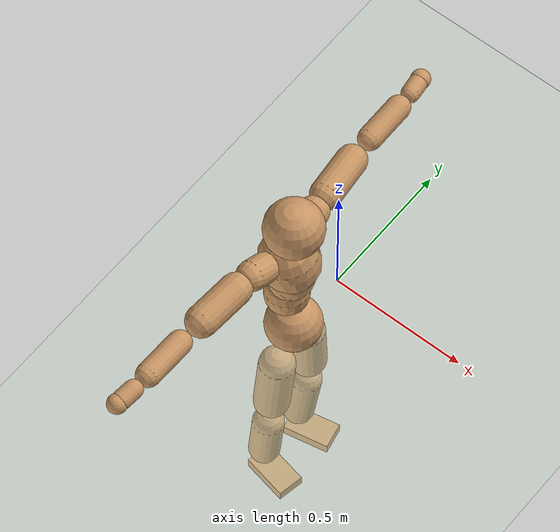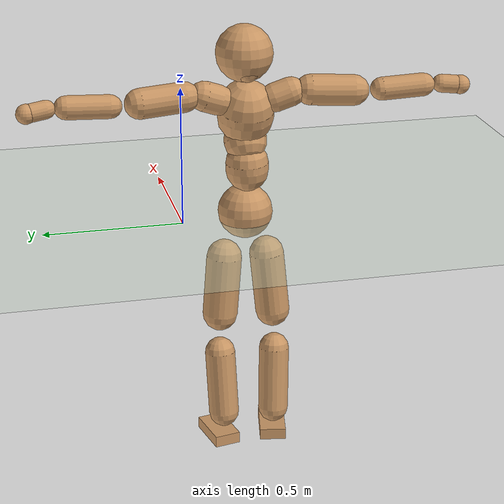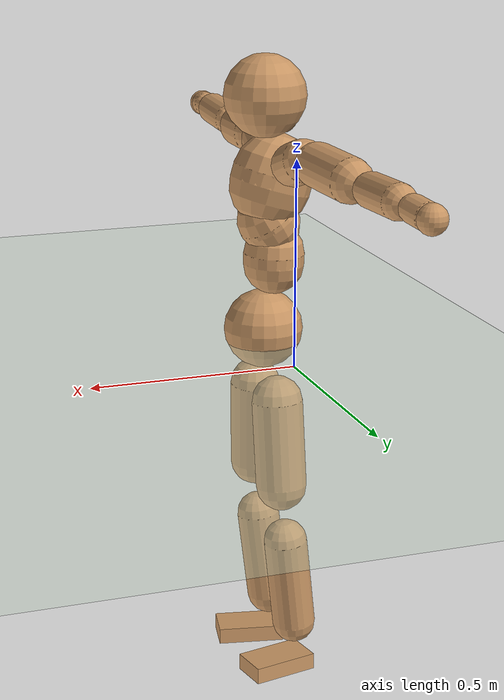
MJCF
<mujoco model="humanoid">
  <compiler coordinate="local"/>
  <default>
    <joint damping="0.0" armature="0.01" stiffness="0.0" limited="true"/>
    <geom conaffinity="1" condim="3" contype="7" margin="0.001" rgba="0.8 0.6 .4 1"/>
  </default>
  <asset>
    <texture type="skybox" builtin="gradient" rgb1=".4 .5 .6" rgb2="0 0 0" width="100" height="100"/>
    <texture builtin="flat" height="1278" mark="cross" markrgb="1 1 1" name="texgeom" random="0.01" rgb1="0.8 0.6 0.4" rgb2="0.8 0.6 0.4" type="cube" width="127"/>
    <texture builtin="checker" height="100" name="texplane" rgb1="0 0 0" rgb2="0.8 0.8 0.8" type="2d" width="100"/>
    <material name="MatPlane" reflectance="0.5" shininess="1" specular="1" texrepeat="60 60" texture="texplane"/>
    <material name="geom" texture="texgeom" texuniform="true"/>
  </asset>
  <worldbody>
    <light cutoff="100" diffuse="1 1 1" dir="-0 0 -1.3" directional="true" exponent="1" pos="0 0 1.3" specular=".1 .1 .1"/>
    <geom conaffinity="1" condim="3" name="floor" pos="0 0 0" rgba="0.8 0.9 0.8 1" size="100 100 .2" type="plane" material="MatPlane"/>
    <body name="Pelvis" pos="-0.0018 -0.2283 0.0312">
      <freejoint name="Pelvis"/>
      <geom type="sphere" contype="1" conaffinity="1" density="500" size="0.0988" pos="0.0000 0.0000 0.0000" name="Pelvis"/>
      <body name="L_Hip" pos="-0.0073 0.0743 -0.0944">
        <joint name="L_Hip_x" type="hinge" pos="0 0 0" axis="1 0 0" stiffness="800" damping="80" armature="0.02" range="-180.0000 180.0000"/>
        <joint name="L_Hip_y" type="hinge" pos="0 0 0" axis="0 1 0" stiffness="800" damping="80" armature="0.02" range="-180.0000 180.0000"/>
        <joint name="L_Hip_z" type="hinge" pos="0 0 0" axis="0 0 1" stiffness="800" damping="80" armature="0.02" range="-180.0000 180.0000"/>
        <geom type="capsule" contype="1" conaffinity="1" density="500" fromto="-0.0020 0.0059 -0.0739 -0.0080 0.0237 -0.2955" size="0.0638" name="L_Hip"/>
        <body name="L_Knee" pos="-0.0101 0.0296 -0.3693">
          <joint name="L_Knee_x" type="hinge" pos="0 0 0" axis="1 0 0" stiffness="800" damping="80" armature="0.02" range="-180.0000 180.0000"/>
          <joint name="L_Knee_y" type="hinge" pos="0 0 0" axis="0 1 0" stiffness="800" damping="80" armature="0.02" range="-180.0000 180.0000"/>
          <joint name="L_Knee_z" type="hinge" pos="0 0 0" axis="0 0 1" stiffness="800" damping="80" armature="0.02" range="-180.0000 180.0000"/>
          <geom type="capsule" contype="1" conaffinity="1" density="500" fromto="-0.0093 -0.0025 -0.0787 -0.0371 -0.0098 -0.3146" size="0.0553" name="L_Knee"/>
          <body name="L_Ankle" pos="-0.0464 -0.0123 -0.3933">
            <joint name="L_Ankle_x" type="hinge" pos="0 0 0" axis="1 0 0" stiffness="800" damping="80" armature="0.02" range="-180.0000 180.0000"/>
            <joint name="L_Ankle_y" type="hinge" pos="0 0 0" axis="0 1 0" stiffness="800" damping="80" armature="0.02" range="-180.0000 180.0000"/>
            <joint name="L_Ankle_z" type="hinge" pos="0 0 0" axis="0 0 1" stiffness="800" damping="80" armature="0.02" range="-180.0000 180.0000"/>
            <geom type="box" contype="1" conaffinity="1" density="500" pos="0.0590 0.0119 -0.0282" size="0.0846 0.0478 0.0211" quat="0.9950 0.0000 0.0000 0.0997" name="L_Ankle"/>
            <body name="L_Toe" pos="0.118 0.0239 -0.0565">
              <joint name="L_Toe_x" type="hinge" pos="0 0 0" axis="1 0 0" stiffness="500" damping="50" armature="0.02" range="-180.0000 180.0000"/>
              <joint name="L_Toe_y" type="hinge" pos="0 0 0" axis="0 1 0" stiffness="500" damping="50" armature="0.02" range="-180.0000 180.0000"/>
              <joint name="L_Toe_z" type="hinge" pos="0 0 0" axis="0 0 1" stiffness="500" damping="50" armature="0.02" range="-180.0000 180.0000"/>
              <geom type="box" contype="1" conaffinity="1" density="500" pos="0.0000 0.0000 0.0277" size="0.001 0.0024 0.001" quat="0.9944 0.0000 0.0000 0.1060" name="L_Toe"/>
            </body>
          </body>
        </body>
      </body>
      <body name="R_Hip" pos="-0.0038 -0.0714 -0.0943">
        <joint name="R_Hip_x" type="hinge" pos="0 0 0" axis="1 0 0" stiffness="800" damping="80" armature="0.02" range="-180.0000 180.0000"/>
        <joint name="R_Hip_y" type="hinge" pos="0 0 0" axis="0 1 0" stiffness="800" damping="80" armature="0.02" range="-180.0000 180.0000"/>
        <joint name="R_Hip_z" type="hinge" pos="0 0 0" axis="0 0 1" stiffness="800" damping="80" armature="0.02" range="-180.0000 180.0000"/>
        <geom type="capsule" contype="1" conaffinity="1" density="500" fromto="-0.0025 -0.0072 -0.0750 -0.0101 -0.0289 -0.2999" size="0.063" name="R_Hip"/>
        <body name="R_Knee" pos="-0.0127 -0.0361 -0.3749">
          <joint name="R_Knee_x" type="hinge" pos="0 0 0" axis="1 0 0" stiffness="800" damping="80" armature="0.02" range="-180.0000 180.0000"/>
          <joint name="R_Knee_y" type="hinge" pos="0 0 0" axis="0 1 0" stiffness="800" damping="80" armature="0.02" range="-180.0000 180.0000"/>
          <joint name="R_Knee_z" type="hinge" pos="0 0 0" axis="0 0 1" stiffness="800" damping="80" armature="0.02" range="-180.0000 180.0000"/>
          <geom type="capsule" contype="1" conaffinity="1" density="500" fromto="-0.0089 0.0029 -0.0786 -0.0358 0.0114 -0.3142" size="0.0553" name="R_Knee"/>
          <body name="R_Ankle" pos="-0.0447 0.0143 -0.3928">
            <joint name="R_Ankle_x" type="hinge" pos="0 0 0" axis="1 0 0" stiffness="800" damping="80" armature="0.02" range="-180.0000 180.0000"/>
            <joint name="R_Ankle_y" type="hinge" pos="0 0 0" axis="0 1 0" stiffness="800" damping="80" armature="0.02" range="-180.0000 180.0000"/>
            <joint name="R_Ankle_z" type="hinge" pos="0 0 0" axis="0 0 1" stiffness="800" damping="80" armature="0.02" range="-180.0000 180.0000"/>
            <geom type="box" contype="1" conaffinity="1" density="500" pos="0.0610 -0.0120 -0.0240" size="0.0859 0.048 0.0208" quat="0.9953 0.0000 0.0000 -0.0968" name="R_Ankle"/>
            <body name="R_Toe" pos="0.1219 -0.0239 -0.0481">
              <joint name="R_Toe_x" type="hinge" pos="0 0 0" axis="1 0 0" stiffness="500" damping="50" armature="0.02" range="-180.0000 180.0000"/>
              <joint name="R_Toe_y" type="hinge" pos="0 0 0" axis="0 1 0" stiffness="500" damping="50" armature="0.02" range="-180.0000 180.0000"/>
              <joint name="R_Toe_z" type="hinge" pos="0 0 0" axis="0 0 1" stiffness="500" damping="50" armature="0.02" range="-180.0000 180.0000"/>
              <geom type="box" contype="1" conaffinity="1" density="500" pos="0.0000 0.0000 0.0263" size="0.0009 0.0024 0.0012" quat="0.9962 0.0000 0.0000 -0.0875" name="R_Toe"/>
            </body>
          </body>
        </body>
      </body>
      <body name="Torso" pos="-0.0256 -0.003 0.11">
        <joint name="Torso_x" type="hinge" pos="0 0 0" axis="1 0 0" stiffness="1000" damping="100" armature="0.02" range="-180.0000 180.0000"/>
        <joint name="Torso_y" type="hinge" pos="0 0 0" axis="0 1 0" stiffness="1000" damping="100" armature="0.02" range="-180.0000 180.0000"/>
        <joint name="Torso_z" type="hinge" pos="0 0 0" axis="0 0 1" stiffness="1000" damping="100" armature="0.02" range="-180.0000 180.0000"/>
        <geom type="capsule" contype="1" conaffinity="1" density="500" fromto="-0.0015 0.0027 0.0820 -0.0010 0.0018 0.0546" size="0.0763" name="Torso"/>
        <body name="Spine" pos="-0.0025 0.0044 0.1366">
          <joint name="Spine_x" type="hinge" pos="0 0 0" axis="1 0 0" stiffness="1000" damping="100" armature="0.02" range="-180.0000 180.0000"/>
          <joint name="Spine_y" type="hinge" pos="0 0 0" axis="0 1 0" stiffness="1000" damping="100" armature="0.02" range="-180.0000 180.0000"/>
          <joint name="Spine_z" type="hinge" pos="0 0 0" axis="0 0 1" stiffness="1000" damping="100" armature="0.02" range="-180.0000 180.0000"/>
          <geom type="capsule" contype="1" conaffinity="1" density="500" fromto="0.0198 0.0013 0.0313 0.0132 0.0009 0.0208" size="0.076" name="Spine"/>
          <body name="Chest" pos="0.0329 0.0022 0.0521">
            <joint name="Chest_x" type="hinge" pos="0 0 0" axis="1 0 0" stiffness="1000" damping="100" armature="0.02" range="-180.0000 180.0000"/>
            <joint name="Chest_y" type="hinge" pos="0 0 0" axis="0 1 0" stiffness="1000" damping="100" armature="0.02" range="-180.0000 180.0000"/>
            <joint name="Chest_z" type="hinge" pos="0 0 0" axis="0 0 1" stiffness="1000" damping="100" armature="0.02" range="-180.0000 180.0000"/>
            <geom type="capsule" contype="1" conaffinity="1" density="500" fromto="-0.0280 -0.0006 0.0934 -0.0186 -0.0004 0.0623" size="0.1004" name="Chest"/>
            <body name="Neck" pos="-0.0557 -0.0021 0.22">
              <joint name="Neck_x" type="hinge" pos="0 0 0" axis="1 0 0" stiffness="500" damping="50" armature="0.02" range="-180.0000 180.0000"/>
              <joint name="Neck_y" type="hinge" pos="0 0 0" axis="0 1 0" stiffness="500" damping="50" armature="0.02" range="-180.0000 180.0000"/>
              <joint name="Neck_z" type="hinge" pos="0 0 0" axis="0 0 1" stiffness="500" damping="50" armature="0.02" range="-180.0000 180.0000"/>
              <geom type="capsule" contype="1" conaffinity="1" density="500" fromto="0.0100 0.0004 0.0126 0.0402 0.0016 0.0505" size="0.0431" name="Neck"/>
              <body name="Head" pos="0.0502 0.002 0.0631">
                <joint name="Head_x" type="hinge" pos="0 0 0" axis="1 0 0" stiffness="500" damping="50" armature="0.02" range="-180.0000 180.0000"/>
                <joint name="Head_y" type="hinge" pos="0 0 0" axis="0 1 0" stiffness="500" damping="50" armature="0.02" range="-180.0000 180.0000"/>
                <joint name="Head_z" type="hinge" pos="0 0 0" axis="0 0 1" stiffness="500" damping="50" armature="0.02" range="-180.0000 180.0000"/>
                <geom type="sphere" contype="1" conaffinity="1" density="500" size="0.1015" pos="0.0000 0.0000 0.0000" name="Head"/>
              </body>
            </body>
            <body name="L_Thorax" pos="-0.0398 0.0796 0.1245">
              <joint name="L_Thorax_x" type="hinge" pos="0 0 0" axis="1 0 0" stiffness="500" damping="50" armature="0.02" range="-180.0000 180.0000"/>
              <joint name="L_Thorax_y" type="hinge" pos="0 0 0" axis="0 1 0" stiffness="500" damping="50" armature="0.02" range="-180.0000 180.0000"/>
              <joint name="L_Thorax_z" type="hinge" pos="0 0 0" axis="0 0 1" stiffness="500" damping="50" armature="0.02" range="-180.0000 180.0000"/>
              <geom type="capsule" contype="1" conaffinity="1" density="500" fromto="-0.0018 0.0180 0.0065 -0.0071 0.0719 0.0259" size="0.053" name="L_Thorax"/>
              <body name="L_Shoulder" pos="-0.0089 0.0899 0.0323">
                <joint name="L_Shoulder_x" type="hinge" pos="0 0 0" axis="1 0 0" stiffness="500" damping="50" armature="0.02" range="-720.0000 720.0000"/>
                <joint name="L_Shoulder_y" type="hinge" pos="0 0 0" axis="0 1 0" stiffness="500" damping="50" armature="0.02" range="-720.0000 720.0000"/>
                <joint name="L_Shoulder_z" type="hinge" pos="0 0 0" axis="0 0 1" stiffness="500" damping="50" armature="0.02" range="-720.0000 720.0000"/>
                <geom type="capsule" contype="1" conaffinity="1" density="500" fromto="-0.0061 0.0522 -0.0025 -0.0245 0.2088 -0.0100" size="0.0536" name="L_Shoulder"/>
                <body name="L_Elbow" pos="-0.0307 0.261 -0.0125">
                  <joint name="L_Elbow_x" type="hinge" pos="0 0 0" axis="1 0 0" stiffness="500" damping="50" armature="0.02" range="-720.0000 720.0000"/>
                  <joint name="L_Elbow_y" type="hinge" pos="0 0 0" axis="0 1 0" stiffness="500" damping="50" armature="0.02" range="-720.0000 720.0000"/>
                  <joint name="L_Elbow_z" type="hinge" pos="0 0 0" axis="0 0 1" stiffness="500" damping="50" armature="0.02" range="-720.0000 720.0000"/>
                  <geom type="capsule" contype="1" conaffinity="1" density="500" fromto="0.0003 0.0495 0.0018 0.0011 0.1981 0.0074" size="0.0412" name="L_Elbow"/>
                  <body name="L_Wrist" pos="0.0013 0.2476 0.0092">
                    <joint name="L_Wrist_x" type="hinge" pos="0 0 0" axis="1 0 0" stiffness="300" damping="30" armature="0.02" range="-180.0000 180.0000"/>
                    <joint name="L_Wrist_y" type="hinge" pos="0 0 0" axis="0 1 0" stiffness="300" damping="30" armature="0.02" range="-180.0000 180.0000"/>
                    <joint name="L_Wrist_z" type="hinge" pos="0 0 0" axis="0 0 1" stiffness="300" damping="30" armature="0.02" range="-180.0000 180.0000"/>
                    <geom type="capsule" contype="1" conaffinity="1" density="500" fromto="-0.0028 0.0170 -0.0021 -0.0112 0.0681 -0.0082" size="0.0322" name="L_Wrist"/>
                    <body name="L_Hand" pos="-0.014 0.0851 -0.0103">
                      <joint name="L_Hand_x" type="hinge" pos="0 0 0" axis="1 0 0" stiffness="300" damping="30" armature="0.02" range="-180.0000 180.0000"/>
                      <joint name="L_Hand_y" type="hinge" pos="0 0 0" axis="0 1 0" stiffness="300" damping="30" armature="0.02" range="-180.0000 180.0000"/>
                      <joint name="L_Hand_z" type="hinge" pos="0 0 0" axis="0 0 1" stiffness="300" damping="30" armature="0.02" range="-180.0000 180.0000"/>
                      <geom type="sphere" contype="1" conaffinity="1" density="500" size="0.0343" pos="0.0000 0.0000 0.0000" name="L_Hand"/>
                    </body>
                  </body>
                </body>
              </body>
            </body>
            <body name="R_Thorax" pos="-0.0443 -0.0806 0.1224">
              <joint name="R_Thorax_x" type="hinge" pos="0 0 0" axis="1 0 0" stiffness="500" damping="50" armature="0.02" range="-180.0000 180.0000"/>
              <joint name="R_Thorax_y" type="hinge" pos="0 0 0" axis="0 1 0" stiffness="500" damping="50" armature="0.02" range="-180.0000 180.0000"/>
              <joint name="R_Thorax_z" type="hinge" pos="0 0 0" axis="0 0 1" stiffness="500" damping="50" armature="0.02" range="-180.0000 180.0000"/>
              <geom type="capsule" contype="1" conaffinity="1" density="500" fromto="-0.0020 -0.0187 0.0065 -0.0079 -0.0746 0.0262" size="0.0518" name="R_Thorax"/>
              <body name="R_Shoulder" pos="-0.0099 -0.0933 0.0327">
                <joint name="R_Shoulder_x" type="hinge" pos="0 0 0" axis="1 0 0" stiffness="500" damping="50" armature="0.02" range="-720.0000 720.0000"/>
                <joint name="R_Shoulder_y" type="hinge" pos="0 0 0" axis="0 1 0" stiffness="500" damping="50" armature="0.02" range="-720.0000 720.0000"/>
                <joint name="R_Shoulder_z" type="hinge" pos="0 0 0" axis="0 0 1" stiffness="500" damping="50" armature="0.02" range="-720.0000 720.0000"/>
                <geom type="capsule" contype="1" conaffinity="1" density="500" fromto="-0.0043 -0.0508 -0.0027 -0.0174 -0.2033 -0.0107" size="0.0549" name="R_Shoulder"/>
                <body name="R_Elbow" pos="-0.0217 -0.2542 -0.0134">
                  <joint name="R_Elbow_x" type="hinge" pos="0 0 0" axis="1 0 0" stiffness="500" damping="50" armature="0.02" range="-720.0000 720.0000"/>
                  <joint name="R_Elbow_y" type="hinge" pos="0 0 0" axis="0 1 0" stiffness="500" damping="50" armature="0.02" range="-720.0000 720.0000"/>
                  <joint name="R_Elbow_z" type="hinge" pos="0 0 0" axis="0 0 1" stiffness="500" damping="50" armature="0.02" range="-720.0000 720.0000"/>
                  <geom type="capsule" contype="1" conaffinity="1" density="500" fromto="-0.0004 -0.0505 0.0020 -0.0014 -0.2021 0.0080" size="0.0412" name="R_Elbow"/>
                  <body name="R_Wrist" pos="-0.0018 -0.2527 0.01">
                    <joint name="R_Wrist_x" type="hinge" pos="0 0 0" axis="1 0 0" stiffness="300" damping="30" armature="0.02" range="-180.0000 180.0000"/>
                    <joint name="R_Wrist_y" type="hinge" pos="0 0 0" axis="0 1 0" stiffness="300" damping="30" armature="0.02" range="-180.0000 180.0000"/>
                    <joint name="R_Wrist_z" type="hinge" pos="0 0 0" axis="0 0 1" stiffness="300" damping="30" armature="0.02" range="-180.0000 180.0000"/>
                    <geom type="capsule" contype="1" conaffinity="1" density="500" fromto="-0.0022 -0.0170 -0.0015 -0.0088 -0.0679 -0.0061" size="0.0326" name="R_Wrist"/>
                    <body name="R_Hand" pos="-0.011 -0.0848 -0.0076">
                      <joint name="R_Hand_x" type="hinge" pos="0 0 0" axis="1 0 0" stiffness="300" damping="30" armature="0.02" range="-180.0000 180.0000"/>
                      <joint name="R_Hand_y" type="hinge" pos="0 0 0" axis="0 1 0" stiffness="300" damping="30" armature="0.02" range="-180.0000 180.0000"/>
                      <joint name="R_Hand_z" type="hinge" pos="0 0 0" axis="0 0 1" stiffness="300" damping="30" armature="0.02" range="-180.0000 180.0000"/>
                      <geom type="sphere" contype="1" conaffinity="1" density="500" size="0.0341" pos="0.0000 0.0000 0.0000" name="R_Hand"/>
                    </body>
                  </body>
                </body>
              </body>
            </body>
          </body>
        </body>
      </body>
    </body>
  </worldbody>
  <actuator>
    <motor name="L_Hip_x" joint="L_Hip_x" gear="500"/>
    <motor name="L_Hip_y" joint="L_Hip_y" gear="500"/>
    <motor name="L_Hip_z" joint="L_Hip_z" gear="500"/>
    <motor name="L_Knee_x" joint="L_Knee_x" gear="500"/>
    <motor name="L_Knee_y" joint="L_Knee_y" gear="500"/>
    <motor name="L_Knee_z" joint="L_Knee_z" gear="500"/>
    <motor name="L_Ankle_x" joint="L_Ankle_x" gear="500"/>
    <motor name="L_Ankle_y" joint="L_Ankle_y" gear="500"/>
    <motor name="L_Ankle_z" joint="L_Ankle_z" gear="500"/>
    <motor name="L_Toe_x" joint="L_Toe_x" gear="500"/>
    <motor name="L_Toe_y" joint="L_Toe_y" gear="500"/>
    <motor name="L_Toe_z" joint="L_Toe_z" gear="500"/>
    <motor name="R_Hip_x" joint="R_Hip_x" gear="500"/>
    <motor name="R_Hip_y" joint="R_Hip_y" gear="500"/>
    <motor name="R_Hip_z" joint="R_Hip_z" gear="500"/>
    <motor name="R_Knee_x" joint="R_Knee_x" gear="500"/>
    <motor name="R_Knee_y" joint="R_Knee_y" gear="500"/>
    <motor name="R_Knee_z" joint="R_Knee_z" gear="500"/>
    <motor name="R_Ankle_x" joint="R_Ankle_x" gear="500"/>
    <motor name="R_Ankle_y" joint="R_Ankle_y" gear="500"/>
    <motor name="R_Ankle_z" joint="R_Ankle_z" gear="500"/>
    <motor name="R_Toe_x" joint="R_Toe_x" gear="500"/>
    <motor name="R_Toe_y" joint="R_Toe_y" gear="500"/>
    <motor name="R_Toe_z" joint="R_Toe_z" gear="500"/>
    <motor name="Torso_x" joint="Torso_x" gear="500"/>
    <motor name="Torso_y" joint="Torso_y" gear="500"/>
    <motor name="Torso_z" joint="Torso_z" gear="500"/>
    <motor name="Spine_x" joint="Spine_x" gear="500"/>
    <motor name="Spine_y" joint="Spine_y" gear="500"/>
    <motor name="Spine_z" joint="Spine_z" gear="500"/>
    <motor name="Chest_x" joint="Chest_x" gear="500"/>
    <motor name="Chest_y" joint="Chest_y" gear="500"/>
    <motor name="Chest_z" joint="Chest_z" gear="500"/>
    <motor name="Neck_x" joint="Neck_x" gear="500"/>
    <motor name="Neck_y" joint="Neck_y" gear="500"/>
    <motor name="Neck_z" joint="Neck_z" gear="500"/>
    <motor name="Head_x" joint="Head_x" gear="500"/>
    <motor name="Head_y" joint="Head_y" gear="500"/>
    <motor name="Head_z" joint="Head_z" gear="500"/>
    <motor name="L_Thorax_x" joint="L_Thorax_x" gear="500"/>
    <motor name="L_Thorax_y" joint="L_Thorax_y" gear="500"/>
    <motor name="L_Thorax_z" joint="L_Thorax_z" gear="500"/>
    <motor name="L_Shoulder_x" joint="L_Shoulder_x" gear="500"/>
    <motor name="L_Shoulder_y" joint="L_Shoulder_y" gear="500"/>
    <motor name="L_Shoulder_z" joint="L_Shoulder_z" gear="500"/>
    <motor name="L_Elbow_x" joint="L_Elbow_x" gear="500"/>
    <motor name="L_Elbow_y" joint="L_Elbow_y" gear="500"/>
    <motor name="L_Elbow_z" joint="L_Elbow_z" gear="500"/>
    <motor name="L_Wrist_x" joint="L_Wrist_x" gear="500"/>
    <motor name="L_Wrist_y" joint="L_Wrist_y" gear="500"/>
    <motor name="L_Wrist_z" joint="L_Wrist_z" gear="500"/>
    <motor name="L_Hand_x" joint="L_Hand_x" gear="500"/>
    <motor name="L_Hand_y" joint="L_Hand_y" gear="500"/>
    <motor name="L_Hand_z" joint="L_Hand_z" gear="500"/>
    <motor name="R_Thorax_x" joint="R_Thorax_x" gear="500"/>
    <motor name="R_Thorax_y" joint="R_Thorax_y" gear="500"/>
    <motor name="R_Thorax_z" joint="R_Thorax_z" gear="500"/>
    <motor name="R_Shoulder_x" joint="R_Shoulder_x" gear="500"/>
    <motor name="R_Shoulder_y" joint="R_Shoulder_y" gear="500"/>
    <motor name="R_Shoulder_z" joint="R_Shoulder_z" gear="500"/>
    <motor name="R_Elbow_x" joint="R_Elbow_x" gear="500"/>
    <motor name="R_Elbow_y" joint="R_Elbow_y" gear="500"/>
    <motor name="R_Elbow_z" joint="R_Elbow_z" gear="500"/>
    <motor name="R_Wrist_x" joint="R_Wrist_x" gear="500"/>
    <motor name="R_Wrist_y" joint="R_Wrist_y" gear="500"/>
    <motor name="R_Wrist_z" joint="R_Wrist_z" gear="500"/>
    <motor name="R_Hand_x" joint="R_Hand_x" gear="500"/>
    <motor name="R_Hand_y" joint="R_Hand_y" gear="500"/>
    <motor name="R_Hand_z" joint="R_Hand_z" gear="500"/>
  </actuator>
  <contact>
    <exclude body1="Torso" body2="Chest"/>
    <exclude body1="Head" body2="Chest"/>
    <exclude body1="R_Knee" body2="R_Toe"/>
    <exclude body1="R_Knee" body2="L_Ankle"/>
    <exclude body1="R_Knee" body2="L_Toe"/>
    <exclude body1="L_Knee" body2="L_Toe"/>
    <exclude body1="L_Knee" body2="R_Ankle"/>
    <exclude body1="L_Knee" body2="R_Toe"/>
    <exclude body1="L_Shoulder" body2="Chest"/>
    <exclude body1="R_Shoulder" body2="Chest"/>
  </contact>
  <sensor/>
  <size njmax="700" nconmax="700"/>
</mujoco>
